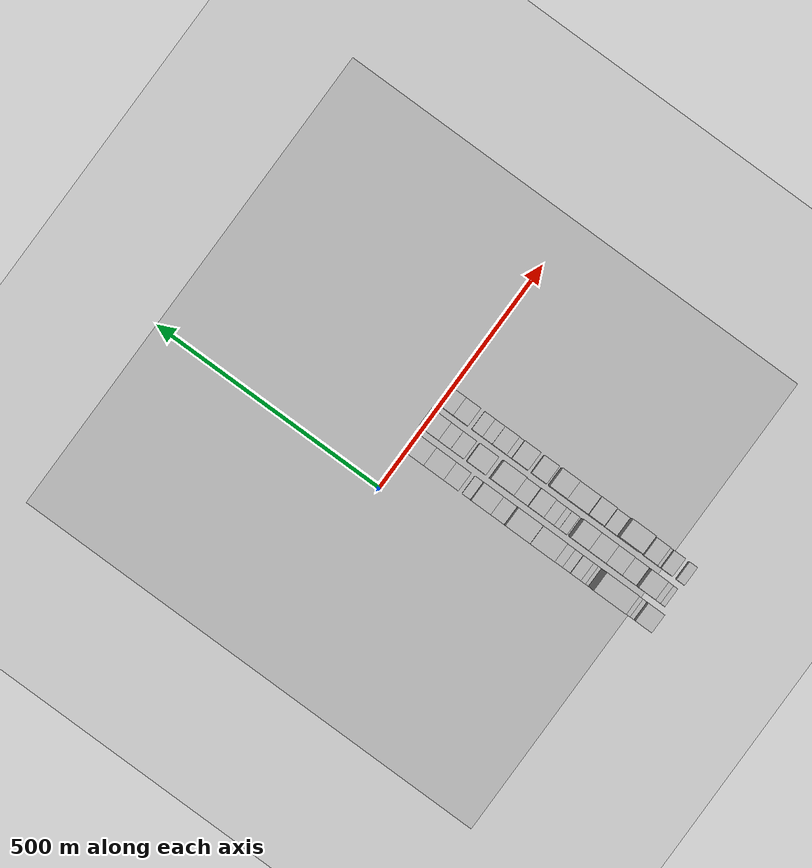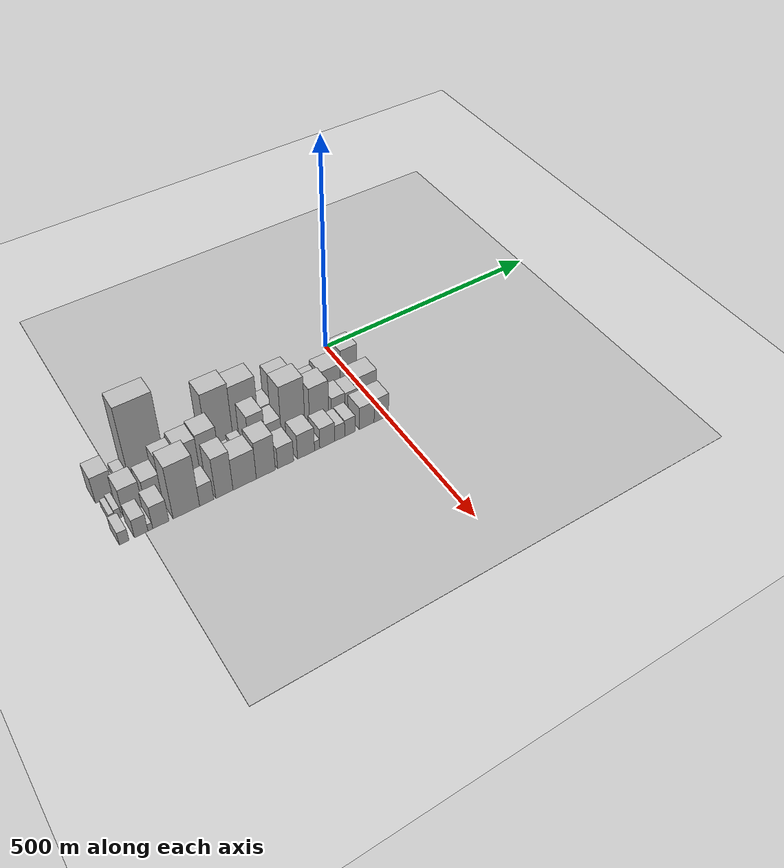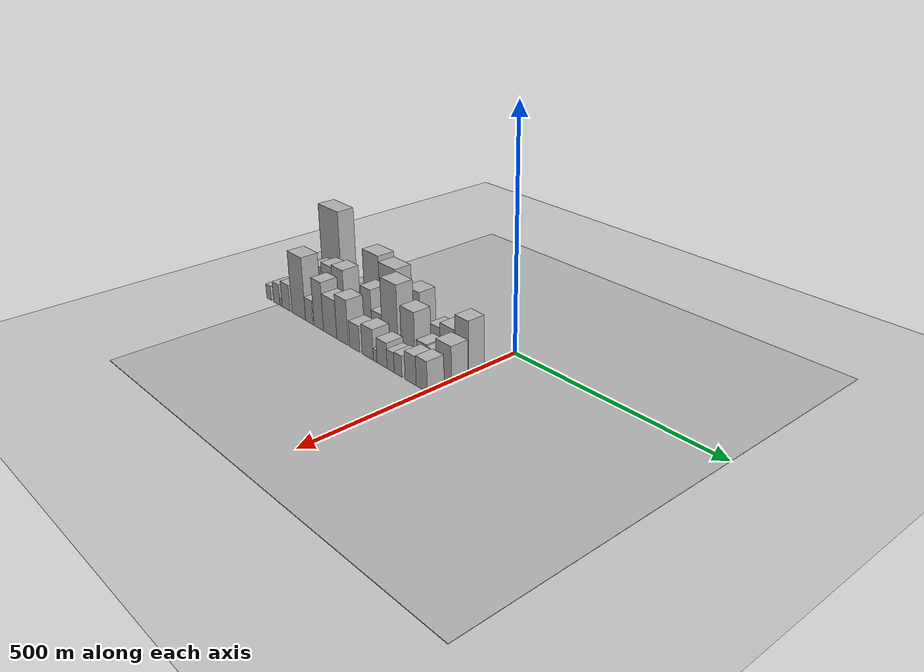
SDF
<sdf version="1.6">
 <world name="default">
  <include><name>ground_plane_1</name><uri>model://HANNAS_ground_plane</uri></include>
  <include>
   <name>ground_plane_2</name>
   <uri>model://HANNAS_ground_plane</uri>
   <pose>100 0 0  0 0 0</pose>
  </include>
  <model name="building_1">
   <static>1</static>
   <pose>100.0000 -529.7918 0 0.000000 0.000000 0.000000</pose>
   <link name="link">
    <pose>0 0 34.50 0 0 0</pose>
    <collision name="collision"><geometry><box><size>40.0000 36.4164 69.0000</size></box></geometry></collision>
    <visual name="visual">
     <cast_shadows>0</cast_shadows>
     <geometry><box><size>40.0000 36.4164 69.0000</size></box></geometry>
     <material>
      <script>
       <uri>model://HANNAS_wall/materials/scripts</uri>
       <uri>model://HANNAS_wall/materials/textures</uri>
       <name>vrc/HANNAS_wall</name>
      </script>
     </material>
    </visual>
   </link>
  </model>
  <model name="building_2">
   <static>1</static>
   <pose>100.0000 -506.6692 0 0.000000 0.000000 0.000000</pose>
   <link name="link">
    <pose>0 0 10.50 0 0 0</pose>
    <collision name="collision"><geometry><box><size>40.0000 9.8289 21.0000</size></box></geometry></collision>
    <visual name="visual">
     <cast_shadows>0</cast_shadows>
     <geometry><box><size>40.0000 9.8289 21.0000</size></box></geometry>
     <material>
      <script>
       <uri>model://HANNAS_wall/materials/scripts</uri>
       <uri>model://HANNAS_wall/materials/textures</uri>
       <name>vrc/HANNAS_wall</name>
      </script>
     </material>
    </visual>
   </link>
  </model>
  <model name="building_3">
   <static>1</static>
   <pose>100.0000 -491.1735 0 0.000000 0.000000 0.000000</pose>
   <link name="link">
    <pose>0 0 19.50 0 0 0</pose>
    <collision name="collision"><geometry><box><size>40.0000 21.1624 39.0000</size></box></geometry></collision>
    <visual name="visual">
     <cast_shadows>0</cast_shadows>
     <geometry><box><size>40.0000 21.1624 39.0000</size></box></geometry>
     <material>
      <script>
       <uri>model://HANNAS_wall/materials/scripts</uri>
       <uri>model://HANNAS_wall/materials/textures</uri>
       <name>vrc/HANNAS_wall</name>
      </script>
     </material>
    </visual>
   </link>
  </model>
  <model name="building_4">
   <static>1</static>
   <pose>100.0000 -445.2849 0 0.000000 0.000000 0.000000</pose>
   <link name="link">
    <pose>0 0 105.00 0 0 0</pose>
    <collision name="collision"><geometry><box><size>40.0000 70.6147 210.0000</size></box></geometry></collision>
    <visual name="visual">
     <cast_shadows>0</cast_shadows>
     <geometry><box><size>40.0000 70.6147 210.0000</size></box></geometry>
     <material>
      <script>
       <uri>model://HANNAS_wall/materials/scripts</uri>
       <uri>model://HANNAS_wall/materials/textures</uri>
       <name>vrc/HANNAS_wall</name>
      </script>
     </material>
    </visual>
   </link>
  </model>
  <model name="building_5">
   <static>1</static>
   <pose>100.0000 -406.3742 0 0.000000 0.000000 0.000000</pose>
   <link name="link">
    <pose>0 0 7.50 0 0 0</pose>
    <collision name="collision"><geometry><box><size>40.0000 7.2066 15.0000</size></box></geometry></collision>
    <visual name="visual">
     <cast_shadows>0</cast_shadows>
     <geometry><box><size>40.0000 7.2066 15.0000</size></box></geometry>
     <material>
      <script>
       <uri>model://HANNAS_wall/materials/scripts</uri>
       <uri>model://HANNAS_wall/materials/textures</uri>
       <name>vrc/HANNAS_wall</name>
      </script>
     </material>
    </visual>
   </link>
  </model>
  <model name="building_6">
   <static>1</static>
   <pose>100.0000 -397.1257 0 0.000000 0.000000 0.000000</pose>
   <link name="link">
    <pose>0 0 13.50 0 0 0</pose>
    <collision name="collision"><geometry><box><size>40.0000 11.2906 27.0000</size></box></geometry></collision>
    <visual name="visual">
     <cast_shadows>0</cast_shadows>
     <geometry><box><size>40.0000 11.2906 27.0000</size></box></geometry>
     <material>
      <script>
       <uri>model://HANNAS_wall/materials/scripts</uri>
       <uri>model://HANNAS_wall/materials/textures</uri>
       <name>vrc/HANNAS_wall</name>
      </script>
     </material>
    </visual>
   </link>
  </model>
  <model name="building_7">
   <static>1</static>
   <pose>100.0000 -380.0836 0 0.000000 0.000000 0.000000</pose>
   <link name="link">
    <pose>0 0 22.50 0 0 0</pose>
    <collision name="collision"><geometry><box><size>40.0000 22.7934 45.0000</size></box></geometry></collision>
    <visual name="visual">
     <cast_shadows>0</cast_shadows>
     <geometry><box><size>40.0000 22.7934 45.0000</size></box></geometry>
     <material>
      <script>
       <uri>model://HANNAS_wall/materials/scripts</uri>
       <uri>model://HANNAS_wall/materials/textures</uri>
       <name>vrc/HANNAS_wall</name>
      </script>
     </material>
    </visual>
   </link>
  </model>
  <model name="building_8">
   <static>1</static>
   <pose>100.0000 -359.7217 0 0.000000 0.000000 0.000000</pose>
   <link name="link">
    <pose>0 0 15.00 0 0 0</pose>
    <collision name="collision"><geometry><box><size>40.0000 17.9304 30.0000</size></box></geometry></collision>
    <visual name="visual">
     <cast_shadows>0</cast_shadows>
     <geometry><box><size>40.0000 17.9304 30.0000</size></box></geometry>
     <material>
      <script>
       <uri>model://HANNAS_wall/materials/scripts</uri>
       <uri>model://HANNAS_wall/materials/textures</uri>
       <name>vrc/HANNAS_wall</name>
      </script>
     </material>
    </visual>
   </link>
  </model>
  <model name="building_9">
   <static>1</static>
   <pose>100.0000 -339.2862 0 0.000000 0.000000 0.000000</pose>
   <link name="link">
    <pose>0 0 19.50 0 0 0</pose>
    <collision name="collision"><geometry><box><size>40.0000 22.9406 39.0000</size></box></geometry></collision>
    <visual name="visual">
     <cast_shadows>0</cast_shadows>
     <geometry><box><size>40.0000 22.9406 39.0000</size></box></geometry>
     <material>
      <script>
       <uri>model://HANNAS_wall/materials/scripts</uri>
       <uri>model://HANNAS_wall/materials/textures</uri>
       <name>vrc/HANNAS_wall</name>
      </script>
     </material>
    </visual>
   </link>
  </model>
  <model name="building_10">
   <static>1</static>
   <pose>100.0000 -301.1103 0 0.000000 0.000000 0.000000</pose>
   <link name="link">
    <pose>0 0 76.50 0 0 0</pose>
    <collision name="collision"><geometry><box><size>40.0000 53.4113 153.0000</size></box></geometry></collision>
    <visual name="visual">
     <cast_shadows>0</cast_shadows>
     <geometry><box><size>40.0000 53.4113 153.0000</size></box></geometry>
     <material>
      <script>
       <uri>model://HANNAS_wall/materials/scripts</uri>
       <uri>model://HANNAS_wall/materials/textures</uri>
       <name>vrc/HANNAS_wall</name>
      </script>
     </material>
    </visual>
   </link>
  </model>
  <model name="building_11">
   <static>1</static>
   <pose>100.0000 -247.2647 0 0.000000 0.000000 0.000000</pose>
   <link name="link">
    <pose>0 0 70.50 0 0 0</pose>
    <collision name="collision"><geometry><box><size>40.0000 54.2798 141.0000</size></box></geometry></collision>
    <visual name="visual">
     <cast_shadows>0</cast_shadows>
     <geometry><box><size>40.0000 54.2798 141.0000</size></box></geometry>
     <material>
      <script>
       <uri>model://HANNAS_wall/materials/scripts</uri>
       <uri>model://HANNAS_wall/materials/textures</uri>
       <name>vrc/HANNAS_wall</name>
      </script>
     </material>
    </visual>
   </link>
  </model>
  <model name="building_12">
   <static>1</static>
   <pose>100.0000 -204.1808 0 0.000000 0.000000 0.000000</pose>
   <link name="link">
    <pose>0 0 27.00 0 0 0</pose>
    <collision name="collision"><geometry><box><size>40.0000 31.8879 54.0000</size></box></geometry></collision>
    <visual name="visual">
     <cast_shadows>0</cast_shadows>
     <geometry><box><size>40.0000 31.8879 54.0000</size></box></geometry>
     <material>
      <script>
       <uri>model://HANNAS_wall/materials/scripts</uri>
       <uri>model://HANNAS_wall/materials/textures</uri>
       <name>vrc/HANNAS_wall</name>
      </script>
     </material>
    </visual>
   </link>
  </model>
  <model name="building_13">
   <static>1</static>
   <pose>100.0000 -166.6848 0 0.000000 0.000000 0.000000</pose>
   <link name="link">
    <pose>0 0 58.50 0 0 0</pose>
    <collision name="collision"><geometry><box><size>40.0000 43.1041 117.0000</size></box></geometry></collision>
    <visual name="visual">
     <cast_shadows>0</cast_shadows>
     <geometry><box><size>40.0000 43.1041 117.0000</size></box></geometry>
     <material>
      <script>
       <uri>model://HANNAS_wall/materials/scripts</uri>
       <uri>model://HANNAS_wall/materials/textures</uri>
       <name>vrc/HANNAS_wall</name>
      </script>
     </material>
    </visual>
   </link>
  </model>
  <model name="building_14">
   <static>1</static>
   <pose>100.0000 -135.9264 0 0.000000 0.000000 0.000000</pose>
   <link name="link">
    <pose>0 0 16.50 0 0 0</pose>
    <collision name="collision"><geometry><box><size>40.0000 18.4126 33.0000</size></box></geometry></collision>
    <visual name="visual">
     <cast_shadows>0</cast_shadows>
     <geometry><box><size>40.0000 18.4126 33.0000</size></box></geometry>
     <material>
      <script>
       <uri>model://HANNAS_wall/materials/scripts</uri>
       <uri>model://HANNAS_wall/materials/textures</uri>
       <name>vrc/HANNAS_wall</name>
      </script>
     </material>
    </visual>
   </link>
  </model>
  <model name="building_15">
   <static>1</static>
   <pose>100.0000 -101.1869 0 0.000000 0.000000 0.000000</pose>
   <link name="link">
    <pose>0 0 31.50 0 0 0</pose>
    <collision name="collision"><geometry><box><size>40.0000 33.0664 63.0000</size></box></geometry></collision>
    <visual name="visual">
     <cast_shadows>0</cast_shadows>
     <geometry><box><size>40.0000 33.0664 63.0000</size></box></geometry>
     <material>
      <script>
       <uri>model://HANNAS_wall/materials/scripts</uri>
       <uri>model://HANNAS_wall/materials/textures</uri>
       <name>vrc/HANNAS_wall</name>
      </script>
     </material>
    </visual>
   </link>
  </model>
  <model name="building_16">
   <static>1</static>
   <pose>100.0000 -62.4404 0 0.000000 0.000000 0.000000</pose>
   <link name="link">
    <pose>0 0 37.50 0 0 0</pose>
    <collision name="collision"><geometry><box><size>40.0000 44.4265 75.0000</size></box></geometry></collision>
    <visual name="visual">
     <cast_shadows>0</cast_shadows>
     <geometry><box><size>40.0000 44.4265 75.0000</size></box></geometry>
     <material>
      <script>
       <uri>model://HANNAS_wall/materials/scripts</uri>
       <uri>model://HANNAS_wall/materials/textures</uri>
       <name>vrc/HANNAS_wall</name>
      </script>
     </material>
    </visual>
   </link>
  </model>
  <model name="building_17">
   <static>1</static>
   <pose>100.0000 -21.3865 0 0.000000 0.000000 0.000000</pose>
   <link name="link">
    <pose>0 0 54.00 0 0 0</pose>
    <collision name="collision"><geometry><box><size>40.0000 37.6813 108.0000</size></box></geometry></collision>
    <visual name="visual">
     <cast_shadows>0</cast_shadows>
     <geometry><box><size>40.0000 37.6813 108.0000</size></box></geometry>
     <material>
      <script>
       <uri>model://HANNAS_wall/materials/scripts</uri>
       <uri>model://HANNAS_wall/materials/textures</uri>
       <name>vrc/HANNAS_wall</name>
      </script>
     </material>
    </visual>
   </link>
  </model>
  <model name="building_38">
   <static>1</static>
   <pose>152.0000 -537.8394 0 0.000000 0.000000 0.000000</pose>
   <link name="link">
    <pose>0 0 10.50 0 0 0</pose>
    <collision name="collision"><geometry><box><size>40.0000 10.3213 21.0000</size></box></geometry></collision>
    <visual name="visual">
     <cast_shadows>0</cast_shadows>
     <geometry><box><size>40.0000 10.3213 21.0000</size></box></geometry>
     <material>
      <script>
       <uri>model://HANNAS_wall/materials/scripts</uri>
       <uri>model://HANNAS_wall/materials/textures</uri>
       <name>vrc/HANNAS_wall</name>
      </script>
     </material>
    </visual>
   </link>
  </model>
  <model name="building_39">
   <static>1</static>
   <pose>152.0000 -526.9172 0 0.000000 0.000000 0.000000</pose>
   <link name="link">
    <pose>0 0 13.50 0 0 0</pose>
    <collision name="collision"><geometry><box><size>40.0000 11.5229 27.0000</size></box></geometry></collision>
    <visual name="visual">
     <cast_shadows>0</cast_shadows>
     <geometry><box><size>40.0000 11.5229 27.0000</size></box></geometry>
     <material>
      <script>
       <uri>model://HANNAS_wall/materials/scripts</uri>
       <uri>model://HANNAS_wall/materials/textures</uri>
       <name>vrc/HANNAS_wall</name>
      </script>
     </material>
    </visual>
   </link>
  </model>
  <model name="building_40">
   <static>1</static>
   <pose>152.0000 -499.3836 0 0.000000 0.000000 0.000000</pose>
   <link name="link">
    <pose>0 0 36.00 0 0 0</pose>
    <collision name="collision"><geometry><box><size>40.0000 37.5443 72.0000</size></box></geometry></collision>
    <visual name="visual">
     <cast_shadows>0</cast_shadows>
     <geometry><box><size>40.0000 37.5443 72.0000</size></box></geometry>
     <material>
      <script>
       <uri>model://HANNAS_wall/materials/scripts</uri>
       <uri>model://HANNAS_wall/materials/textures</uri>
       <name>vrc/HANNAS_wall</name>
      </script>
     </material>
    </visual>
   </link>
  </model>
  <model name="building_41">
   <static>1</static>
   <pose>152.0000 -458.7321 0 0.000000 0.000000 0.000000</pose>
   <link name="link">
    <pose>0 0 33.00 0 0 0</pose>
    <collision name="collision"><geometry><box><size>40.0000 33.7587 66.0000</size></box></geometry></collision>
    <visual name="visual">
     <cast_shadows>0</cast_shadows>
     <geometry><box><size>40.0000 33.7587 66.0000</size></box></geometry>
     <material>
      <script>
       <uri>model://HANNAS_wall/materials/scripts</uri>
       <uri>model://HANNAS_wall/materials/textures</uri>
       <name>vrc/HANNAS_wall</name>
      </script>
     </material>
    </visual>
   </link>
  </model>
  <model name="building_42">
   <static>1</static>
   <pose>152.0000 -423.5592 0 0.000000 0.000000 0.000000</pose>
   <link name="link">
    <pose>0 0 51.00 0 0 0</pose>
    <collision name="collision"><geometry><box><size>40.0000 36.5873 102.0000</size></box></geometry></collision>
    <visual name="visual">
     <cast_shadows>0</cast_shadows>
     <geometry><box><size>40.0000 36.5873 102.0000</size></box></geometry>
     <material>
      <script>
       <uri>model://HANNAS_wall/materials/scripts</uri>
       <uri>model://HANNAS_wall/materials/textures</uri>
       <name>vrc/HANNAS_wall</name>
      </script>
     </material>
    </visual>
   </link>
  </model>
  <model name="building_43">
   <static>1</static>
   <pose>152.0000 -386.0118 0 0.000000 0.000000 0.000000</pose>
   <link name="link">
    <pose>0 0 57.00 0 0 0</pose>
    <collision name="collision"><geometry><box><size>40.0000 38.5074 114.0000</size></box></geometry></collision>
    <visual name="visual">
     <cast_shadows>0</cast_shadows>
     <geometry><box><size>40.0000 38.5074 114.0000</size></box></geometry>
     <material>
      <script>
       <uri>model://HANNAS_wall/materials/scripts</uri>
       <uri>model://HANNAS_wall/materials/textures</uri>
       <name>vrc/HANNAS_wall</name>
      </script>
     </material>
    </visual>
   </link>
  </model>
  <model name="building_44">
   <static>1</static>
   <pose>152.0000 -346.9782 0 0.000000 0.000000 0.000000</pose>
   <link name="link">
    <pose>0 0 60.00 0 0 0</pose>
    <collision name="collision"><geometry><box><size>40.0000 39.5599 120.0000</size></box></geometry></collision>
    <visual name="visual">
     <cast_shadows>0</cast_shadows>
     <geometry><box><size>40.0000 39.5599 120.0000</size></box></geometry>
     <material>
      <script>
       <uri>model://HANNAS_wall/materials/scripts</uri>
       <uri>model://HANNAS_wall/materials/textures</uri>
       <name>vrc/HANNAS_wall</name>
      </script>
     </material>
    </visual>
   </link>
  </model>
  <model name="building_45">
   <static>1</static>
   <pose>152.0000 -314.3785 0 0.000000 0.000000 0.000000</pose>
   <link name="link">
    <pose>0 0 15.00 0 0 0</pose>
    <collision name="collision"><geometry><box><size>40.0000 17.6395 30.0000</size></box></geometry></collision>
    <visual name="visual">
     <cast_shadows>0</cast_shadows>
     <geometry><box><size>40.0000 17.6395 30.0000</size></box></geometry>
     <material>
      <script>
       <uri>model://HANNAS_wall/materials/scripts</uri>
       <uri>model://HANNAS_wall/materials/textures</uri>
       <name>vrc/HANNAS_wall</name>
      </script>
     </material>
    </visual>
   </link>
  </model>
  <model name="building_46">
   <static>1</static>
   <pose>152.0000 -299.5391 0 0.000000 0.000000 0.000000</pose>
   <link name="link">
    <pose>0 0 13.50 0 0 0</pose>
    <collision name="collision"><geometry><box><size>40.0000 12.0394 27.0000</size></box></geometry></collision>
    <visual name="visual">
     <cast_shadows>0</cast_shadows>
     <geometry><box><size>40.0000 12.0394 27.0000</size></box></geometry>
     <material>
      <script>
       <uri>model://HANNAS_wall/materials/scripts</uri>
       <uri>model://HANNAS_wall/materials/textures</uri>
       <name>vrc/HANNAS_wall</name>
      </script>
     </material>
    </visual>
   </link>
  </model>
  <model name="building_47">
   <static>1</static>
   <pose>152.0000 -282.0845 0 0.000000 0.000000 0.000000</pose>
   <link name="link">
    <pose>0 0 19.50 0 0 0</pose>
    <collision name="collision"><geometry><box><size>40.0000 22.8698 39.0000</size></box></geometry></collision>
    <visual name="visual">
     <cast_shadows>0</cast_shadows>
     <geometry><box><size>40.0000 22.8698 39.0000</size></box></geometry>
     <material>
      <script>
       <uri>model://HANNAS_wall/materials/scripts</uri>
       <uri>model://HANNAS_wall/materials/textures</uri>
       <name>vrc/HANNAS_wall</name>
      </script>
     </material>
    </visual>
   </link>
  </model>
  <model name="building_48">
   <static>1</static>
   <pose>152.0000 -250.8772 0 0.000000 0.000000 0.000000</pose>
   <link name="link">
    <pose>0 0 54.00 0 0 0</pose>
    <collision name="collision"><geometry><box><size>40.0000 33.5448 108.0000</size></box></geometry></collision>
    <visual name="visual">
     <cast_shadows>0</cast_shadows>
     <geometry><box><size>40.0000 33.5448 108.0000</size></box></geometry>
     <material>
      <script>
       <uri>model://HANNAS_wall/materials/scripts</uri>
       <uri>model://HANNAS_wall/materials/textures</uri>
       <name>vrc/HANNAS_wall</name>
      </script>
     </material>
    </visual>
   </link>
  </model>
  <model name="building_49">
   <static>1</static>
   <pose>152.0000 -217.2099 0 0.000000 0.000000 0.000000</pose>
   <link name="link">
    <pose>0 0 33.00 0 0 0</pose>
    <collision name="collision"><geometry><box><size>40.0000 33.7898 66.0000</size></box></geometry></collision>
    <visual name="visual">
     <cast_shadows>0</cast_shadows>
     <geometry><box><size>40.0000 33.7898 66.0000</size></box></geometry>
     <material>
      <script>
       <uri>model://HANNAS_wall/materials/scripts</uri>
       <uri>model://HANNAS_wall/materials/textures</uri>
       <name>vrc/HANNAS_wall</name>
      </script>
     </material>
    </visual>
   </link>
  </model>
  <model name="building_50">
   <static>1</static>
   <pose>152.0000 -175.0840 0 0.000000 0.000000 0.000000</pose>
   <link name="link">
    <pose>0 0 73.50 0 0 0</pose>
    <collision name="collision"><geometry><box><size>40.0000 50.4621 147.0000</size></box></geometry></collision>
    <visual name="visual">
     <cast_shadows>0</cast_shadows>
     <geometry><box><size>40.0000 50.4621 147.0000</size></box></geometry>
     <material>
      <script>
       <uri>model://HANNAS_wall/materials/scripts</uri>
       <uri>model://HANNAS_wall/materials/textures</uri>
       <name>vrc/HANNAS_wall</name>
      </script>
     </material>
    </visual>
   </link>
  </model>
  <model name="building_51">
   <static>1</static>
   <pose>152.0000 -118.9574 0 0.000000 0.000000 0.000000</pose>
   <link name="link">
    <pose>0 0 54.00 0 0 0</pose>
    <collision name="collision"><geometry><box><size>40.0000 41.7911 108.0000</size></box></geometry></collision>
    <visual name="visual">
     <cast_shadows>0</cast_shadows>
     <geometry><box><size>40.0000 41.7911 108.0000</size></box></geometry>
     <material>
      <script>
       <uri>model://HANNAS_wall/materials/scripts</uri>
       <uri>model://HANNAS_wall/materials/textures</uri>
       <name>vrc/HANNAS_wall</name>
      </script>
     </material>
    </visual>
   </link>
  </model>
  <model name="building_52">
   <static>1</static>
   <pose>152.0000 -77.1667 0 0.000000 0.000000 0.000000</pose>
   <link name="link">
    <pose>0 0 27.00 0 0 0</pose>
    <collision name="collision"><geometry><box><size>40.0000 29.7903 54.0000</size></box></geometry></collision>
    <visual name="visual">
     <cast_shadows>0</cast_shadows>
     <geometry><box><size>40.0000 29.7903 54.0000</size></box></geometry>
     <material>
      <script>
       <uri>model://HANNAS_wall/materials/scripts</uri>
       <uri>model://HANNAS_wall/materials/textures</uri>
       <name>vrc/HANNAS_wall</name>
      </script>
     </material>
    </visual>
   </link>
  </model>
  <model name="building_53">
   <static>1</static>
   <pose>152.0000 -48.7767 0 0.000000 0.000000 0.000000</pose>
   <link name="link">
    <pose>0 0 25.50 0 0 0</pose>
    <collision name="collision"><geometry><box><size>40.0000 26.9896 51.0000</size></box></geometry></collision>
    <visual name="visual">
     <cast_shadows>0</cast_shadows>
     <geometry><box><size>40.0000 26.9896 51.0000</size></box></geometry>
     <material>
      <script>
       <uri>model://HANNAS_wall/materials/scripts</uri>
       <uri>model://HANNAS_wall/materials/textures</uri>
       <name>vrc/HANNAS_wall</name>
      </script>
     </material>
    </visual>
   </link>
  </model>
  <model name="building_54">
   <static>1</static>
   <pose>152.0000 -13.2022 0 0.000000 0.000000 0.000000</pose>
   <link name="link">
    <pose>0 0 39.00 0 0 0</pose>
    <collision name="collision"><geometry><box><size>40.0000 44.1593 78.0000</size></box></geometry></collision>
    <visual name="visual">
     <cast_shadows>0</cast_shadows>
     <geometry><box><size>40.0000 44.1593 78.0000</size></box></geometry>
     <material>
      <script>
       <uri>model://HANNAS_wall/materials/scripts</uri>
       <uri>model://HANNAS_wall/materials/textures</uri>
       <name>vrc/HANNAS_wall</name>
      </script>
     </material>
    </visual>
   </link>
  </model>
  <model name="building_71">
   <static>1</static>
   <pose>204.0000 -539.0254 0 0.000000 0.000000 0.000000</pose>
   <link name="link">
    <pose>0 0 16.50 0 0 0</pose>
    <collision name="collision"><geometry><box><size>40.0000 17.9493 33.0000</size></box></geometry></collision>
    <visual name="visual">
     <cast_shadows>0</cast_shadows>
     <geometry><box><size>40.0000 17.9493 33.0000</size></box></geometry>
     <material>
      <script>
       <uri>model://HANNAS_wall/materials/scripts</uri>
       <uri>model://HANNAS_wall/materials/textures</uri>
       <name>vrc/HANNAS_wall</name>
      </script>
     </material>
    </visual>
   </link>
  </model>
  <model name="building_72">
   <static>1</static>
   <pose>204.0000 -507.3591 0 0.000000 0.000000 0.000000</pose>
   <link name="link">
    <pose>0 0 24.00 0 0 0</pose>
    <collision name="collision"><geometry><box><size>40.0000 25.3833 48.0000</size></box></geometry></collision>
    <visual name="visual">
     <cast_shadows>0</cast_shadows>
     <geometry><box><size>40.0000 25.3833 48.0000</size></box></geometry>
     <material>
      <script>
       <uri>model://HANNAS_wall/materials/scripts</uri>
       <uri>model://HANNAS_wall/materials/textures</uri>
       <name>vrc/HANNAS_wall</name>
      </script>
     </material>
    </visual>
   </link>
  </model>
  <model name="building_73">
   <static>1</static>
   <pose>204.0000 -490.1794 0 0.000000 0.000000 0.000000</pose>
   <link name="link">
    <pose>0 0 9.00 0 0 0</pose>
    <collision name="collision"><geometry><box><size>40.0000 8.9761 18.0000</size></box></geometry></collision>
    <visual name="visual">
     <cast_shadows>0</cast_shadows>
     <geometry><box><size>40.0000 8.9761 18.0000</size></box></geometry>
     <material>
      <script>
       <uri>model://HANNAS_wall/materials/scripts</uri>
       <uri>model://HANNAS_wall/materials/textures</uri>
       <name>vrc/HANNAS_wall</name>
      </script>
     </material>
    </visual>
   </link>
  </model>
  <model name="building_74">
   <static>1</static>
   <pose>204.0000 -470.3459 0 0.000000 0.000000 0.000000</pose>
   <link name="link">
    <pose>0 0 30.00 0 0 0</pose>
    <collision name="collision"><geometry><box><size>40.0000 30.6908 60.0000</size></box></geometry></collision>
    <visual name="visual">
     <cast_shadows>0</cast_shadows>
     <geometry><box><size>40.0000 30.6908 60.0000</size></box></geometry>
     <material>
      <script>
       <uri>model://HANNAS_wall/materials/scripts</uri>
       <uri>model://HANNAS_wall/materials/textures</uri>
       <name>vrc/HANNAS_wall</name>
      </script>
     </material>
    </visual>
   </link>
  </model>
  <model name="building_75">
   <static>1</static>
   <pose>204.0000 -421.3926 0 0.000000 0.000000 0.000000</pose>
   <link name="link">
    <pose>0 0 70.50 0 0 0</pose>
    <collision name="collision"><geometry><box><size>40.0000 51.2158 141.0000</size></box></geometry></collision>
    <visual name="visual">
     <cast_shadows>0</cast_shadows>
     <geometry><box><size>40.0000 51.2158 141.0000</size></box></geometry>
     <material>
      <script>
       <uri>model://HANNAS_wall/materials/scripts</uri>
       <uri>model://HANNAS_wall/materials/textures</uri>
       <name>vrc/HANNAS_wall</name>
      </script>
     </material>
    </visual>
   </link>
  </model>
  <model name="building_76">
   <static>1</static>
   <pose>204.0000 -381.8906 0 0.000000 0.000000 0.000000</pose>
   <link name="link">
    <pose>0 0 27.00 0 0 0</pose>
    <collision name="collision"><geometry><box><size>40.0000 27.7882 54.0000</size></box></geometry></collision>
    <visual name="visual">
     <cast_shadows>0</cast_shadows>
     <geometry><box><size>40.0000 27.7882 54.0000</size></box></geometry>
     <material>
      <script>
       <uri>model://HANNAS_wall/materials/scripts</uri>
       <uri>model://HANNAS_wall/materials/textures</uri>
       <name>vrc/HANNAS_wall</name>
      </script>
     </material>
    </visual>
   </link>
  </model>
  <model name="building_77">
   <static>1</static>
   <pose>204.0000 -346.8396 0 0.000000 0.000000 0.000000</pose>
   <link name="link">
    <pose>0 0 54.00 0 0 0</pose>
    <collision name="collision"><geometry><box><size>40.0000 34.3137 108.0000</size></box></geometry></collision>
    <visual name="visual">
     <cast_shadows>0</cast_shadows>
     <geometry><box><size>40.0000 34.3137 108.0000</size></box></geometry>
     <material>
      <script>
       <uri>model://HANNAS_wall/materials/scripts</uri>
       <uri>model://HANNAS_wall/materials/textures</uri>
       <name>vrc/HANNAS_wall</name>
      </script>
     </material>
    </visual>
   </link>
  </model>
  <model name="building_78">
   <static>1</static>
   <pose>204.0000 -306.0941 0 0.000000 0.000000 0.000000</pose>
   <link name="link">
    <pose>0 0 42.00 0 0 0</pose>
    <collision name="collision"><geometry><box><size>40.0000 47.1772 84.0000</size></box></geometry></collision>
    <visual name="visual">
     <cast_shadows>0</cast_shadows>
     <geometry><box><size>40.0000 47.1772 84.0000</size></box></geometry>
     <material>
      <script>
       <uri>model://HANNAS_wall/materials/scripts</uri>
       <uri>model://HANNAS_wall/materials/textures</uri>
       <name>vrc/HANNAS_wall</name>
      </script>
     </material>
    </visual>
   </link>
  </model>
  <model name="building_79">
   <static>1</static>
   <pose>204.0000 -263.0220 0 0.000000 0.000000 0.000000</pose>
   <link name="link">
    <pose>0 0 49.50 0 0 0</pose>
    <collision name="collision"><geometry><box><size>40.0000 38.9670 99.0000</size></box></geometry></collision>
    <visual name="visual">
     <cast_shadows>0</cast_shadows>
     <geometry><box><size>40.0000 38.9670 99.0000</size></box></geometry>
     <material>
      <script>
       <uri>model://HANNAS_wall/materials/scripts</uri>
       <uri>model://HANNAS_wall/materials/textures</uri>
       <name>vrc/HANNAS_wall</name>
      </script>
     </material>
    </visual>
   </link>
  </model>
  <model name="building_80">
   <static>1</static>
   <pose>204.0000 -221.7472 0 0.000000 0.000000 0.000000</pose>
   <link name="link">
    <pose>0 0 28.50 0 0 0</pose>
    <collision name="collision"><geometry><box><size>40.0000 33.5825 57.0000</size></box></geometry></collision>
    <visual name="visual">
     <cast_shadows>0</cast_shadows>
     <geometry><box><size>40.0000 33.5825 57.0000</size></box></geometry>
     <material>
      <script>
       <uri>model://HANNAS_wall/materials/scripts</uri>
       <uri>model://HANNAS_wall/materials/textures</uri>
       <name>vrc/HANNAS_wall</name>
      </script>
     </material>
    </visual>
   </link>
  </model>
  <model name="building_81">
   <static>1</static>
   <pose>204.0000 -178.8654 0 0.000000 0.000000 0.000000</pose>
   <link name="link">
    <pose>0 0 33.00 0 0 0</pose>
    <collision name="collision"><geometry><box><size>40.0000 36.1811 66.0000</size></box></geometry></collision>
    <visual name="visual">
     <cast_shadows>0</cast_shadows>
     <geometry><box><size>40.0000 36.1811 66.0000</size></box></geometry>
     <material>
      <script>
       <uri>model://HANNAS_wall/materials/scripts</uri>
       <uri>model://HANNAS_wall/materials/textures</uri>
       <name>vrc/HANNAS_wall</name>
      </script>
     </material>
    </visual>
   </link>
  </model>
  <model name="building_82">
   <static>1</static>
   <pose>204.0000 -155.1031 0 0.000000 0.000000 0.000000</pose>
   <link name="link">
    <pose>0 0 13.50 0 0 0</pose>
    <collision name="collision"><geometry><box><size>40.0000 11.3435 27.0000</size></box></geometry></collision>
    <visual name="visual">
     <cast_shadows>0</cast_shadows>
     <geometry><box><size>40.0000 11.3435 27.0000</size></box></geometry>
     <material>
      <script>
       <uri>model://HANNAS_wall/materials/scripts</uri>
       <uri>model://HANNAS_wall/materials/textures</uri>
       <name>vrc/HANNAS_wall</name>
      </script>
     </material>
    </visual>
   </link>
  </model>
  <model name="building_83">
   <static>1</static>
   <pose>204.0000 -133.4371 0 0.000000 0.000000 0.000000</pose>
   <link name="link">
    <pose>0 0 27.00 0 0 0</pose>
    <collision name="collision"><geometry><box><size>40.0000 31.9885 54.0000</size></box></geometry></collision>
    <visual name="visual">
     <cast_shadows>0</cast_shadows>
     <geometry><box><size>40.0000 31.9885 54.0000</size></box></geometry>
     <material>
      <script>
       <uri>model://HANNAS_wall/materials/scripts</uri>
       <uri>model://HANNAS_wall/materials/textures</uri>
       <name>vrc/HANNAS_wall</name>
      </script>
     </material>
    </visual>
   </link>
  </model>
  <model name="building_84">
   <static>1</static>
   <pose>204.0000 -106.4493 0 0.000000 0.000000 0.000000</pose>
   <link name="link">
    <pose>0 0 21.00 0 0 0</pose>
    <collision name="collision"><geometry><box><size>40.0000 21.9872 42.0000</size></box></geometry></collision>
    <visual name="visual">
     <cast_shadows>0</cast_shadows>
     <geometry><box><size>40.0000 21.9872 42.0000</size></box></geometry>
     <material>
      <script>
       <uri>model://HANNAS_wall/materials/scripts</uri>
       <uri>model://HANNAS_wall/materials/textures</uri>
       <name>vrc/HANNAS_wall</name>
      </script>
     </material>
    </visual>
   </link>
  </model>
  <model name="building_85">
   <static>1</static>
   <pose>204.0000 -83.6619 0 0.000000 0.000000 0.000000</pose>
   <link name="link">
    <pose>0 0 22.50 0 0 0</pose>
    <collision name="collision"><geometry><box><size>40.0000 23.5876 45.0000</size></box></geometry></collision>
    <visual name="visual">
     <cast_shadows>0</cast_shadows>
     <geometry><box><size>40.0000 23.5876 45.0000</size></box></geometry>
     <material>
      <script>
       <uri>model://HANNAS_wall/materials/scripts</uri>
       <uri>model://HANNAS_wall/materials/textures</uri>
       <name>vrc/HANNAS_wall</name>
      </script>
     </material>
    </visual>
   </link>
  </model>
  <model name="building_86">
   <static>1</static>
   <pose>204.0000 -46.4274 0 0.000000 0.000000 0.000000</pose>
   <link name="link">
    <pose>0 0 30.00 0 0 0</pose>
    <collision name="collision"><geometry><box><size>40.0000 32.8815 60.0000</size></box></geometry></collision>
    <visual name="visual">
     <cast_shadows>0</cast_shadows>
     <geometry><box><size>40.0000 32.8815 60.0000</size></box></geometry>
     <material>
      <script>
       <uri>model://HANNAS_wall/materials/scripts</uri>
       <uri>model://HANNAS_wall/materials/textures</uri>
       <name>vrc/HANNAS_wall</name>
      </script>
     </material>
    </visual>
   </link>
  </model>
  <model name="building_87">
   <static>1</static>
   <pose>204.0000 -13.9440 0 0.000000 0.000000 0.000000</pose>
   <link name="link">
    <pose>0 0 31.50 0 0 0</pose>
    <collision name="collision"><geometry><box><size>40.0000 32.0853 63.0000</size></box></geometry></collision>
    <visual name="visual">
     <cast_shadows>0</cast_shadows>
     <geometry><box><size>40.0000 32.0853 63.0000</size></box></geometry>
     <material>
      <script>
       <uri>model://HANNAS_wall/materials/scripts</uri>
       <uri>model://HANNAS_wall/materials/textures</uri>
       <name>vrc/HANNAS_wall</name>
      </script>
     </material>
    </visual>
   </link>
  </model>
 </world>
</sdf>
